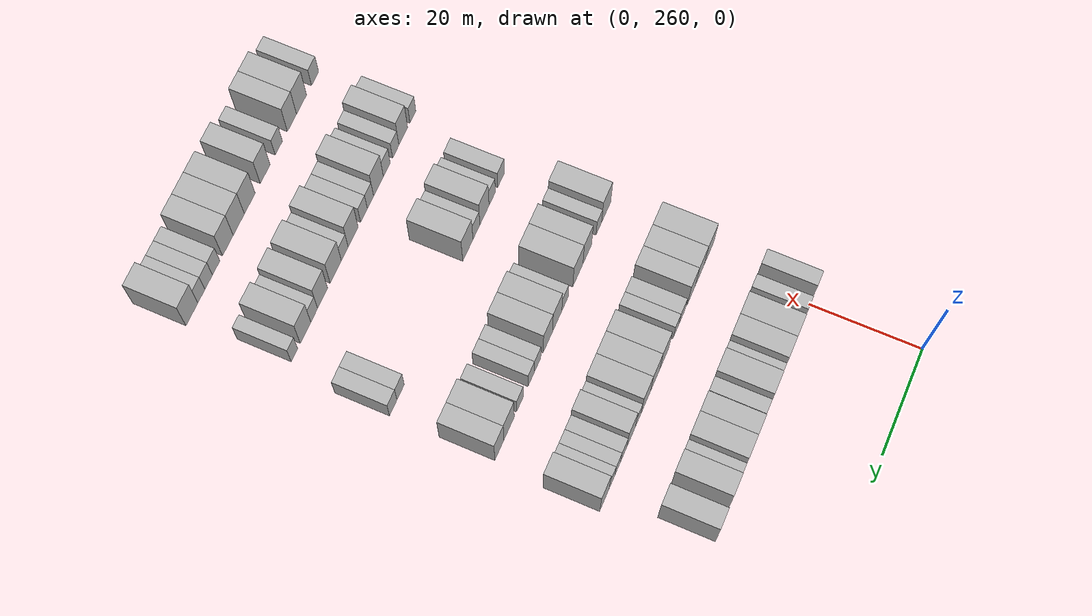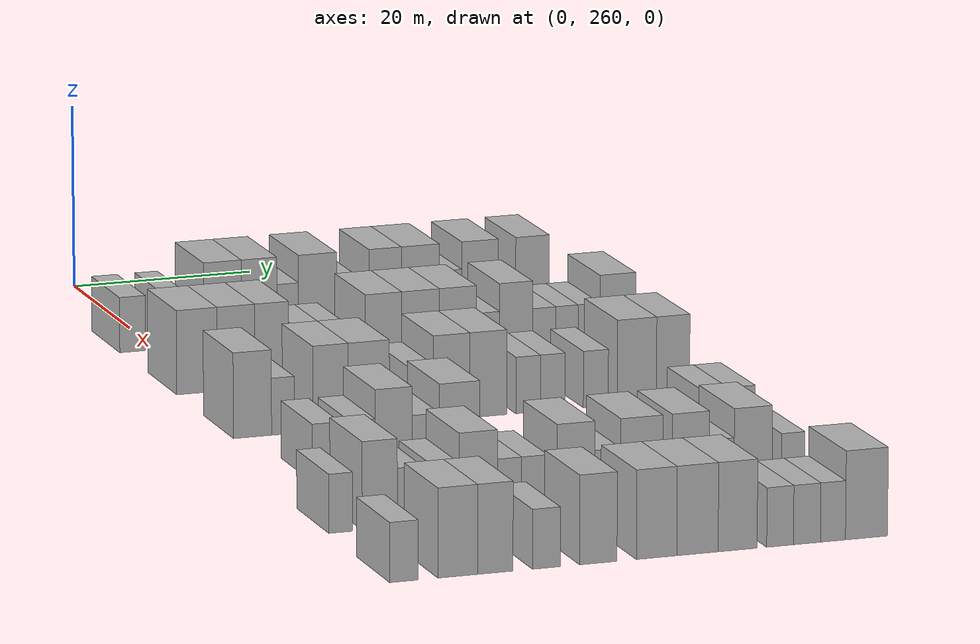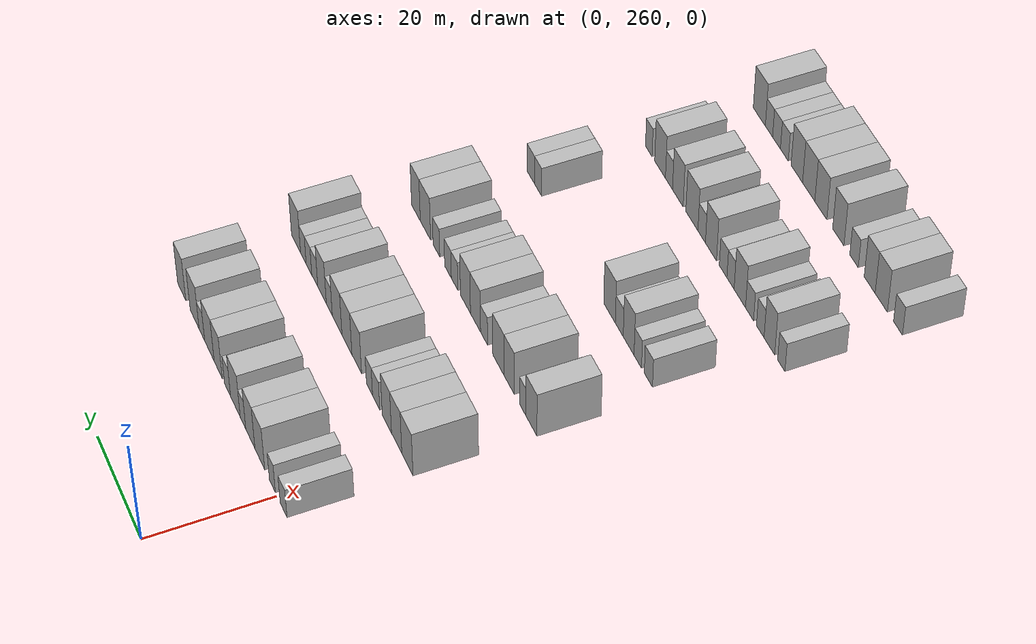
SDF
<sdf version="1.6">
 <world name="default">
  <model name="building_147">
   <static>1</static>
   <pose>25.0000 257.2128 0 0.000000 0.000000 0.000000</pose>
   <link name="link">
    <pose>0 0 3.00 0 0 0</pose>
    <collision name="collision"><geometry><box><size>10.0000 2.8471 6.0000</size></box></geometry></collision>
    <visual name="visual">
     <cast_shadows>0</cast_shadows>
     <geometry><box><size>10.0000 2.8471 6.0000</size></box></geometry>
     <material>
      <script>
       <uri>model://HANNAS_wall/materials/scripts</uri>
       <uri>model://HANNAS_wall/materials/textures</uri>
       <name>vrc/HANNAS_wall</name>
      </script>
     </material>
    </visual>
   </link>
  </model>
  <model name="building_148">
   <static>1</static>
   <pose>25.0000 261.8823 0 0.000000 0.000000 0.000000</pose>
   <link name="link">
    <pose>0 0 3.00 0 0 0</pose>
    <collision name="collision"><geometry><box><size>10.0000 2.4919 6.0000</size></box></geometry></collision>
    <visual name="visual">
     <cast_shadows>0</cast_shadows>
     <geometry><box><size>10.0000 2.4919 6.0000</size></box></geometry>
     <material>
      <script>
       <uri>model://HANNAS_wall/materials/scripts</uri>
       <uri>model://HANNAS_wall/materials/textures</uri>
       <name>vrc/HANNAS_wall</name>
      </script>
     </material>
    </visual>
   </link>
  </model>
  <model name="building_149">
   <static>1</static>
   <pose>25.0000 267.2276 0 0.000000 0.000000 0.000000</pose>
   <link name="link">
    <pose>0 0 4.50 0 0 0</pose>
    <collision name="collision"><geometry><box><size>10.0000 4.1987 9.0000</size></box></geometry></collision>
    <visual name="visual">
     <cast_shadows>0</cast_shadows>
     <geometry><box><size>10.0000 4.1987 9.0000</size></box></geometry>
     <material>
      <script>
       <uri>model://HANNAS_wall/materials/scripts</uri>
       <uri>model://HANNAS_wall/materials/textures</uri>
       <name>vrc/HANNAS_wall</name>
      </script>
     </material>
    </visual>
   </link>
  </model>
  <model name="building_150">
   <static>1</static>
   <pose>25.0000 271.3038 0 0.000000 0.000000 0.000000</pose>
   <link name="link">
    <pose>0 0 4.50 0 0 0</pose>
    <collision name="collision"><geometry><box><size>10.0000 3.9537 9.0000</size></box></geometry></collision>
    <visual name="visual">
     <cast_shadows>0</cast_shadows>
     <geometry><box><size>10.0000 3.9537 9.0000</size></box></geometry>
     <material>
      <script>
       <uri>model://HANNAS_wall/materials/scripts</uri>
       <uri>model://HANNAS_wall/materials/textures</uri>
       <name>vrc/HANNAS_wall</name>
      </script>
     </material>
    </visual>
   </link>
  </model>
  <model name="building_151">
   <static>1</static>
   <pose>25.0000 274.4862 0 0.000000 0.000000 0.000000</pose>
   <link name="link">
    <pose>0 0 3.00 0 0 0</pose>
    <collision name="collision"><geometry><box><size>10.0000 2.4110 6.0000</size></box></geometry></collision>
    <visual name="visual">
     <cast_shadows>0</cast_shadows>
     <geometry><box><size>10.0000 2.4110 6.0000</size></box></geometry>
     <material>
      <script>
       <uri>model://HANNAS_wall/materials/scripts</uri>
       <uri>model://HANNAS_wall/materials/textures</uri>
       <name>vrc/HANNAS_wall</name>
      </script>
     </material>
    </visual>
   </link>
  </model>
  <model name="building_152">
   <static>1</static>
   <pose>25.0000 277.8231 0 0.000000 0.000000 0.000000</pose>
   <link name="link">
    <pose>0 0 4.50 0 0 0</pose>
    <collision name="collision"><geometry><box><size>10.0000 4.2627 9.0000</size></box></geometry></collision>
    <visual name="visual">
     <cast_shadows>0</cast_shadows>
     <geometry><box><size>10.0000 4.2627 9.0000</size></box></geometry>
     <material>
      <script>
       <uri>model://HANNAS_wall/materials/scripts</uri>
       <uri>model://HANNAS_wall/materials/textures</uri>
       <name>vrc/HANNAS_wall</name>
      </script>
     </material>
    </visual>
   </link>
  </model>
  <model name="building_153">
   <static>1</static>
   <pose>25.0000 281.2835 0 0.000000 0.000000 0.000000</pose>
   <link name="link">
    <pose>0 0 3.00 0 0 0</pose>
    <collision name="collision"><geometry><box><size>10.0000 2.6581 6.0000</size></box></geometry></collision>
    <visual name="visual">
     <cast_shadows>0</cast_shadows>
     <geometry><box><size>10.0000 2.6581 6.0000</size></box></geometry>
     <material>
      <script>
       <uri>model://HANNAS_wall/materials/scripts</uri>
       <uri>model://HANNAS_wall/materials/textures</uri>
       <name>vrc/HANNAS_wall</name>
      </script>
     </material>
    </visual>
   </link>
  </model>
  <model name="building_154">
   <static>1</static>
   <pose>25.0000 285.4365 0 0.000000 0.000000 0.000000</pose>
   <link name="link">
    <pose>0 0 4.50 0 0 0</pose>
    <collision name="collision"><geometry><box><size>10.0000 3.6481 9.0000</size></box></geometry></collision>
    <visual name="visual">
     <cast_shadows>0</cast_shadows>
     <geometry><box><size>10.0000 3.6481 9.0000</size></box></geometry>
     <material>
      <script>
       <uri>model://HANNAS_wall/materials/scripts</uri>
       <uri>model://HANNAS_wall/materials/textures</uri>
       <name>vrc/HANNAS_wall</name>
      </script>
     </material>
    </visual>
   </link>
  </model>
  <model name="building_155">
   <static>1</static>
   <pose>25.0000 289.3986 0 0.000000 0.000000 0.000000</pose>
   <link name="link">
    <pose>0 0 4.50 0 0 0</pose>
    <collision name="collision"><geometry><box><size>10.0000 4.2760 9.0000</size></box></geometry></collision>
    <visual name="visual">
     <cast_shadows>0</cast_shadows>
     <geometry><box><size>10.0000 4.2760 9.0000</size></box></geometry>
     <material>
      <script>
       <uri>model://HANNAS_wall/materials/scripts</uri>
       <uri>model://HANNAS_wall/materials/textures</uri>
       <name>vrc/HANNAS_wall</name>
      </script>
     </material>
    </visual>
   </link>
  </model>
  <model name="building_156">
   <static>1</static>
   <pose>25.0000 292.8083 0 0.000000 0.000000 0.000000</pose>
   <link name="link">
    <pose>0 0 3.00 0 0 0</pose>
    <collision name="collision"><geometry><box><size>10.0000 2.5434 6.0000</size></box></geometry></collision>
    <visual name="visual">
     <cast_shadows>0</cast_shadows>
     <geometry><box><size>10.0000 2.5434 6.0000</size></box></geometry>
     <material>
      <script>
       <uri>model://HANNAS_wall/materials/scripts</uri>
       <uri>model://HANNAS_wall/materials/textures</uri>
       <name>vrc/HANNAS_wall</name>
      </script>
     </material>
    </visual>
   </link>
  </model>
  <model name="building_157">
   <static>1</static>
   <pose>25.0000 296.1416 0 0.000000 0.000000 0.000000</pose>
   <link name="link">
    <pose>0 0 4.50 0 0 0</pose>
    <collision name="collision"><geometry><box><size>10.0000 4.1233 9.0000</size></box></geometry></collision>
    <visual name="visual">
     <cast_shadows>0</cast_shadows>
     <geometry><box><size>10.0000 4.1233 9.0000</size></box></geometry>
     <material>
      <script>
       <uri>model://HANNAS_wall/materials/scripts</uri>
       <uri>model://HANNAS_wall/materials/textures</uri>
       <name>vrc/HANNAS_wall</name>
      </script>
     </material>
    </visual>
   </link>
  </model>
  <model name="building_158">
   <static>1</static>
   <pose>25.0000 302.1129 0 0.000000 0.000000 0.000000</pose>
   <link name="link">
    <pose>0 0 4.50 0 0 0</pose>
    <collision name="collision"><geometry><box><size>10.0000 3.8192 9.0000</size></box></geometry></collision>
    <visual name="visual">
     <cast_shadows>0</cast_shadows>
     <geometry><box><size>10.0000 3.8192 9.0000</size></box></geometry>
     <material>
      <script>
       <uri>model://HANNAS_wall/materials/scripts</uri>
       <uri>model://HANNAS_wall/materials/textures</uri>
       <name>vrc/HANNAS_wall</name>
      </script>
     </material>
    </visual>
   </link>
  </model>
  <model name="building_317">
   <static>1</static>
   <pose>44.0000 258.2714 0 0.000000 0.000000 0.000000</pose>
   <link name="link">
    <pose>0 0 4.50 0 0 0</pose>
    <collision name="collision"><geometry><box><size>10.0000 4.4143 9.0000</size></box></geometry></collision>
    <visual name="visual">
     <cast_shadows>0</cast_shadows>
     <geometry><box><size>10.0000 4.4143 9.0000</size></box></geometry>
     <material>
      <script>
       <uri>model://HANNAS_wall/materials/scripts</uri>
       <uri>model://HANNAS_wall/materials/textures</uri>
       <name>vrc/HANNAS_wall</name>
      </script>
     </material>
    </visual>
   </link>
  </model>
  <model name="building_318">
   <static>1</static>
   <pose>44.0000 262.5353 0 0.000000 0.000000 0.000000</pose>
   <link name="link">
    <pose>0 0 4.50 0 0 0</pose>
    <collision name="collision"><geometry><box><size>10.0000 4.1136 9.0000</size></box></geometry></collision>
    <visual name="visual">
     <cast_shadows>0</cast_shadows>
     <geometry><box><size>10.0000 4.1136 9.0000</size></box></geometry>
     <material>
      <script>
       <uri>model://HANNAS_wall/materials/scripts</uri>
       <uri>model://HANNAS_wall/materials/textures</uri>
       <name>vrc/HANNAS_wall</name>
      </script>
     </material>
    </visual>
   </link>
  </model>
  <model name="building_319">
   <static>1</static>
   <pose>44.0000 266.4527 0 0.000000 0.000000 0.000000</pose>
   <link name="link">
    <pose>0 0 4.50 0 0 0</pose>
    <collision name="collision"><geometry><box><size>10.0000 3.7212 9.0000</size></box></geometry></collision>
    <visual name="visual">
     <cast_shadows>0</cast_shadows>
     <geometry><box><size>10.0000 3.7212 9.0000</size></box></geometry>
     <material>
      <script>
       <uri>model://HANNAS_wall/materials/scripts</uri>
       <uri>model://HANNAS_wall/materials/textures</uri>
       <name>vrc/HANNAS_wall</name>
      </script>
     </material>
    </visual>
   </link>
  </model>
  <model name="building_320">
   <static>1</static>
   <pose>44.0000 270.7901 0 0.000000 0.000000 0.000000</pose>
   <link name="link">
    <pose>0 0 3.00 0 0 0</pose>
    <collision name="collision"><geometry><box><size>10.0000 2.9537 6.0000</size></box></geometry></collision>
    <visual name="visual">
     <cast_shadows>0</cast_shadows>
     <geometry><box><size>10.0000 2.9537 6.0000</size></box></geometry>
     <material>
      <script>
       <uri>model://HANNAS_wall/materials/scripts</uri>
       <uri>model://HANNAS_wall/materials/textures</uri>
       <name>vrc/HANNAS_wall</name>
      </script>
     </material>
    </visual>
   </link>
  </model>
  <model name="building_321">
   <static>1</static>
   <pose>44.0000 273.5145 0 0.000000 0.000000 0.000000</pose>
   <link name="link">
    <pose>0 0 3.00 0 0 0</pose>
    <collision name="collision"><geometry><box><size>10.0000 2.4951 6.0000</size></box></geometry></collision>
    <visual name="visual">
     <cast_shadows>0</cast_shadows>
     <geometry><box><size>10.0000 2.4951 6.0000</size></box></geometry>
     <material>
      <script>
       <uri>model://HANNAS_wall/materials/scripts</uri>
       <uri>model://HANNAS_wall/materials/textures</uri>
       <name>vrc/HANNAS_wall</name>
      </script>
     </material>
    </visual>
   </link>
  </model>
  <model name="building_322">
   <static>1</static>
   <pose>44.0000 278.7722 0 0.000000 0.000000 0.000000</pose>
   <link name="link">
    <pose>0 0 4.50 0 0 0</pose>
    <collision name="collision"><geometry><box><size>10.0000 4.0202 9.0000</size></box></geometry></collision>
    <visual name="visual">
     <cast_shadows>0</cast_shadows>
     <geometry><box><size>10.0000 4.0202 9.0000</size></box></geometry>
     <material>
      <script>
       <uri>model://HANNAS_wall/materials/scripts</uri>
       <uri>model://HANNAS_wall/materials/textures</uri>
       <name>vrc/HANNAS_wall</name>
      </script>
     </material>
    </visual>
   </link>
  </model>
  <model name="building_323">
   <static>1</static>
   <pose>44.0000 282.8722 0 0.000000 0.000000 0.000000</pose>
   <link name="link">
    <pose>0 0 4.50 0 0 0</pose>
    <collision name="collision"><geometry><box><size>10.0000 4.1797 9.0000</size></box></geometry></collision>
    <visual name="visual">
     <cast_shadows>0</cast_shadows>
     <geometry><box><size>10.0000 4.1797 9.0000</size></box></geometry>
     <material>
      <script>
       <uri>model://HANNAS_wall/materials/scripts</uri>
       <uri>model://HANNAS_wall/materials/textures</uri>
       <name>vrc/HANNAS_wall</name>
      </script>
     </material>
    </visual>
   </link>
  </model>
  <model name="building_324">
   <static>1</static>
   <pose>44.0000 287.0128 0 0.000000 0.000000 0.000000</pose>
   <link name="link">
    <pose>0 0 4.50 0 0 0</pose>
    <collision name="collision"><geometry><box><size>10.0000 4.1016 9.0000</size></box></geometry></collision>
    <visual name="visual">
     <cast_shadows>0</cast_shadows>
     <geometry><box><size>10.0000 4.1016 9.0000</size></box></geometry>
     <material>
      <script>
       <uri>model://HANNAS_wall/materials/scripts</uri>
       <uri>model://HANNAS_wall/materials/textures</uri>
       <name>vrc/HANNAS_wall</name>
      </script>
     </material>
    </visual>
   </link>
  </model>
  <model name="building_325">
   <static>1</static>
   <pose>44.0000 290.3367 0 0.000000 0.000000 0.000000</pose>
   <link name="link">
    <pose>0 0 3.00 0 0 0</pose>
    <collision name="collision"><geometry><box><size>10.0000 2.5463 6.0000</size></box></geometry></collision>
    <visual name="visual">
     <cast_shadows>0</cast_shadows>
     <geometry><box><size>10.0000 2.5463 6.0000</size></box></geometry>
     <material>
      <script>
       <uri>model://HANNAS_wall/materials/scripts</uri>
       <uri>model://HANNAS_wall/materials/textures</uri>
       <name>vrc/HANNAS_wall</name>
      </script>
     </material>
    </visual>
   </link>
  </model>
  <model name="building_326">
   <static>1</static>
   <pose>44.0000 293.4588 0 0.000000 0.000000 0.000000</pose>
   <link name="link">
    <pose>0 0 4.50 0 0 0</pose>
    <collision name="collision"><geometry><box><size>10.0000 3.6979 9.0000</size></box></geometry></collision>
    <visual name="visual">
     <cast_shadows>0</cast_shadows>
     <geometry><box><size>10.0000 3.6979 9.0000</size></box></geometry>
     <material>
      <script>
       <uri>model://HANNAS_wall/materials/scripts</uri>
       <uri>model://HANNAS_wall/materials/textures</uri>
       <name>vrc/HANNAS_wall</name>
      </script>
     </material>
    </visual>
   </link>
  </model>
  <model name="building_327">
   <static>1</static>
   <pose>44.0000 296.6218 0 0.000000 0.000000 0.000000</pose>
   <link name="link">
    <pose>0 0 3.00 0 0 0</pose>
    <collision name="collision"><geometry><box><size>10.0000 2.6282 6.0000</size></box></geometry></collision>
    <visual name="visual">
     <cast_shadows>0</cast_shadows>
     <geometry><box><size>10.0000 2.6282 6.0000</size></box></geometry>
     <material>
      <script>
       <uri>model://HANNAS_wall/materials/scripts</uri>
       <uri>model://HANNAS_wall/materials/textures</uri>
       <name>vrc/HANNAS_wall</name>
      </script>
     </material>
    </visual>
   </link>
  </model>
  <model name="building_328">
   <static>1</static>
   <pose>44.0000 299.1699 0 0.000000 0.000000 0.000000</pose>
   <link name="link">
    <pose>0 0 3.00 0 0 0</pose>
    <collision name="collision"><geometry><box><size>10.0000 2.4679 6.0000</size></box></geometry></collision>
    <visual name="visual">
     <cast_shadows>0</cast_shadows>
     <geometry><box><size>10.0000 2.4679 6.0000</size></box></geometry>
     <material>
      <script>
       <uri>model://HANNAS_wall/materials/scripts</uri>
       <uri>model://HANNAS_wall/materials/textures</uri>
       <name>vrc/HANNAS_wall</name>
      </script>
     </material>
    </visual>
   </link>
  </model>
  <model name="building_329">
   <static>1</static>
   <pose>44.0000 301.6260 0 0.000000 0.000000 0.000000</pose>
   <link name="link">
    <pose>0 0 3.00 0 0 0</pose>
    <collision name="collision"><geometry><box><size>10.0000 2.4445 6.0000</size></box></geometry></collision>
    <visual name="visual">
     <cast_shadows>0</cast_shadows>
     <geometry><box><size>10.0000 2.4445 6.0000</size></box></geometry>
     <material>
      <script>
       <uri>model://HANNAS_wall/materials/scripts</uri>
       <uri>model://HANNAS_wall/materials/textures</uri>
       <name>vrc/HANNAS_wall</name>
      </script>
     </material>
    </visual>
   </link>
  </model>
  <model name="building_330">
   <static>1</static>
   <pose>44.0000 304.8469 0 0.000000 0.000000 0.000000</pose>
   <link name="link">
    <pose>0 0 4.50 0 0 0</pose>
    <collision name="collision"><geometry><box><size>10.0000 3.9973 9.0000</size></box></geometry></collision>
    <visual name="visual">
     <cast_shadows>0</cast_shadows>
     <geometry><box><size>10.0000 3.9973 9.0000</size></box></geometry>
     <material>
      <script>
       <uri>model://HANNAS_wall/materials/scripts</uri>
       <uri>model://HANNAS_wall/materials/textures</uri>
       <name>vrc/HANNAS_wall</name>
      </script>
     </material>
    </visual>
   </link>
  </model>
  <model name="building_499">
   <static>1</static>
   <pose>63.0000 258.1415 0 0.000000 0.000000 0.000000</pose>
   <link name="link">
    <pose>0 0 4.50 0 0 0</pose>
    <collision name="collision"><geometry><box><size>10.0000 4.0849 9.0000</size></box></geometry></collision>
    <visual name="visual">
     <cast_shadows>0</cast_shadows>
     <geometry><box><size>10.0000 4.0849 9.0000</size></box></geometry>
     <material>
      <script>
       <uri>model://HANNAS_wall/materials/scripts</uri>
       <uri>model://HANNAS_wall/materials/textures</uri>
       <name>vrc/HANNAS_wall</name>
      </script>
     </material>
    </visual>
   </link>
  </model>
  <model name="building_500">
   <static>1</static>
   <pose>63.0000 261.4115 0 0.000000 0.000000 0.000000</pose>
   <link name="link">
    <pose>0 0 3.00 0 0 0</pose>
    <collision name="collision"><geometry><box><size>10.0000 2.4551 6.0000</size></box></geometry></collision>
    <visual name="visual">
     <cast_shadows>0</cast_shadows>
     <geometry><box><size>10.0000 2.4551 6.0000</size></box></geometry>
     <material>
      <script>
       <uri>model://HANNAS_wall/materials/scripts</uri>
       <uri>model://HANNAS_wall/materials/textures</uri>
       <name>vrc/HANNAS_wall</name>
      </script>
     </material>
    </visual>
   </link>
  </model>
  <model name="building_501">
   <static>1</static>
   <pose>63.0000 266.5518 0 0.000000 0.000000 0.000000</pose>
   <link name="link">
    <pose>0 0 4.50 0 0 0</pose>
    <collision name="collision"><geometry><box><size>10.0000 3.8255 9.0000</size></box></geometry></collision>
    <visual name="visual">
     <cast_shadows>0</cast_shadows>
     <geometry><box><size>10.0000 3.8255 9.0000</size></box></geometry>
     <material>
      <script>
       <uri>model://HANNAS_wall/materials/scripts</uri>
       <uri>model://HANNAS_wall/materials/textures</uri>
       <name>vrc/HANNAS_wall</name>
      </script>
     </material>
    </visual>
   </link>
  </model>
  <model name="building_502">
   <static>1</static>
   <pose>63.0000 270.6862 0 0.000000 0.000000 0.000000</pose>
   <link name="link">
    <pose>0 0 4.50 0 0 0</pose>
    <collision name="collision"><geometry><box><size>10.0000 4.4432 9.0000</size></box></geometry></collision>
    <visual name="visual">
     <cast_shadows>0</cast_shadows>
     <geometry><box><size>10.0000 4.4432 9.0000</size></box></geometry>
     <material>
      <script>
       <uri>model://HANNAS_wall/materials/scripts</uri>
       <uri>model://HANNAS_wall/materials/textures</uri>
       <name>vrc/HANNAS_wall</name>
      </script>
     </material>
    </visual>
   </link>
  </model>
  <model name="building_503">
   <static>1</static>
   <pose>63.0000 276.2923 0 0.000000 0.000000 0.000000</pose>
   <link name="link">
    <pose>0 0 3.00 0 0 0</pose>
    <collision name="collision"><geometry><box><size>10.0000 2.7690 6.0000</size></box></geometry></collision>
    <visual name="visual">
     <cast_shadows>0</cast_shadows>
     <geometry><box><size>10.0000 2.7690 6.0000</size></box></geometry>
     <material>
      <script>
       <uri>model://HANNAS_wall/materials/scripts</uri>
       <uri>model://HANNAS_wall/materials/textures</uri>
       <name>vrc/HANNAS_wall</name>
      </script>
     </material>
    </visual>
   </link>
  </model>
  <model name="building_504">
   <static>1</static>
   <pose>63.0000 279.6749 0 0.000000 0.000000 0.000000</pose>
   <link name="link">
    <pose>0 0 4.50 0 0 0</pose>
    <collision name="collision"><geometry><box><size>10.0000 3.9963 9.0000</size></box></geometry></collision>
    <visual name="visual">
     <cast_shadows>0</cast_shadows>
     <geometry><box><size>10.0000 3.9963 9.0000</size></box></geometry>
     <material>
      <script>
       <uri>model://HANNAS_wall/materials/scripts</uri>
       <uri>model://HANNAS_wall/materials/textures</uri>
       <name>vrc/HANNAS_wall</name>
      </script>
     </material>
    </visual>
   </link>
  </model>
  <model name="building_505">
   <static>1</static>
   <pose>63.0000 283.6733 0 0.000000 0.000000 0.000000</pose>
   <link name="link">
    <pose>0 0 4.50 0 0 0</pose>
    <collision name="collision"><geometry><box><size>10.0000 4.0003 9.0000</size></box></geometry></collision>
    <visual name="visual">
     <cast_shadows>0</cast_shadows>
     <geometry><box><size>10.0000 4.0003 9.0000</size></box></geometry>
     <material>
      <script>
       <uri>model://HANNAS_wall/materials/scripts</uri>
       <uri>model://HANNAS_wall/materials/textures</uri>
       <name>vrc/HANNAS_wall</name>
      </script>
     </material>
    </visual>
   </link>
  </model>
  <model name="building_506">
   <static>1</static>
   <pose>63.0000 288.0195 0 0.000000 0.000000 0.000000</pose>
   <link name="link">
    <pose>0 0 3.00 0 0 0</pose>
    <collision name="collision"><geometry><box><size>10.0000 2.6921 6.0000</size></box></geometry></collision>
    <visual name="visual">
     <cast_shadows>0</cast_shadows>
     <geometry><box><size>10.0000 2.6921 6.0000</size></box></geometry>
     <material>
      <script>
       <uri>model://HANNAS_wall/materials/scripts</uri>
       <uri>model://HANNAS_wall/materials/textures</uri>
       <name>vrc/HANNAS_wall</name>
      </script>
     </material>
    </visual>
   </link>
  </model>
  <model name="building_507">
   <static>1</static>
   <pose>63.0000 290.7170 0 0.000000 0.000000 0.000000</pose>
   <link name="link">
    <pose>0 0 3.00 0 0 0</pose>
    <collision name="collision"><geometry><box><size>10.0000 2.7030 6.0000</size></box></geometry></collision>
    <visual name="visual">
     <cast_shadows>0</cast_shadows>
     <geometry><box><size>10.0000 2.7030 6.0000</size></box></geometry>
     <material>
      <script>
       <uri>model://HANNAS_wall/materials/scripts</uri>
       <uri>model://HANNAS_wall/materials/textures</uri>
       <name>vrc/HANNAS_wall</name>
      </script>
     </material>
    </visual>
   </link>
  </model>
  <model name="building_508">
   <static>1</static>
   <pose>63.0000 295.4434 0 0.000000 0.000000 0.000000</pose>
   <link name="link">
    <pose>0 0 3.00 0 0 0</pose>
    <collision name="collision"><geometry><box><size>10.0000 2.7498 6.0000</size></box></geometry></collision>
    <visual name="visual">
     <cast_shadows>0</cast_shadows>
     <geometry><box><size>10.0000 2.7498 6.0000</size></box></geometry>
     <material>
      <script>
       <uri>model://HANNAS_wall/materials/scripts</uri>
       <uri>model://HANNAS_wall/materials/textures</uri>
       <name>vrc/HANNAS_wall</name>
      </script>
     </material>
    </visual>
   </link>
  </model>
  <model name="building_509">
   <static>1</static>
   <pose>63.0000 299.9736 0 0.000000 0.000000 0.000000</pose>
   <link name="link">
    <pose>0 0 4.50 0 0 0</pose>
    <collision name="collision"><geometry><box><size>10.0000 4.3106 9.0000</size></box></geometry></collision>
    <visual name="visual">
     <cast_shadows>0</cast_shadows>
     <geometry><box><size>10.0000 4.3106 9.0000</size></box></geometry>
     <material>
      <script>
       <uri>model://HANNAS_wall/materials/scripts</uri>
       <uri>model://HANNAS_wall/materials/textures</uri>
       <name>vrc/HANNAS_wall</name>
      </script>
     </material>
    </visual>
   </link>
  </model>
  <model name="building_510">
   <static>1</static>
   <pose>63.0000 303.9609 0 0.000000 0.000000 0.000000</pose>
   <link name="link">
    <pose>0 0 4.50 0 0 0</pose>
    <collision name="collision"><geometry><box><size>10.0000 3.6640 9.0000</size></box></geometry></collision>
    <visual name="visual">
     <cast_shadows>0</cast_shadows>
     <geometry><box><size>10.0000 3.6640 9.0000</size></box></geometry>
     <material>
      <script>
       <uri>model://HANNAS_wall/materials/scripts</uri>
       <uri>model://HANNAS_wall/materials/textures</uri>
       <name>vrc/HANNAS_wall</name>
      </script>
     </material>
    </visual>
   </link>
  </model>
  <model name="building_678">
   <static>1</static>
   <pose>82.0000 259.7238 0 0.000000 0.000000 0.000000</pose>
   <link name="link">
    <pose>0 0 3.00 0 0 0</pose>
    <collision name="collision"><geometry><box><size>10.0000 2.9459 6.0000</size></box></geometry></collision>
    <visual name="visual">
     <cast_shadows>0</cast_shadows>
     <geometry><box><size>10.0000 2.9459 6.0000</size></box></geometry>
     <material>
      <script>
       <uri>model://HANNAS_wall/materials/scripts</uri>
       <uri>model://HANNAS_wall/materials/textures</uri>
       <name>vrc/HANNAS_wall</name>
      </script>
     </material>
    </visual>
   </link>
  </model>
  <model name="building_679">
   <static>1</static>
   <pose>82.0000 263.5472 0 0.000000 0.000000 0.000000</pose>
   <link name="link">
    <pose>0 0 3.00 0 0 0</pose>
    <collision name="collision"><geometry><box><size>10.0000 2.7008 6.0000</size></box></geometry></collision>
    <visual name="visual">
     <cast_shadows>0</cast_shadows>
     <geometry><box><size>10.0000 2.7008 6.0000</size></box></geometry>
     <material>
      <script>
       <uri>model://HANNAS_wall/materials/scripts</uri>
       <uri>model://HANNAS_wall/materials/textures</uri>
       <name>vrc/HANNAS_wall</name>
      </script>
     </material>
    </visual>
   </link>
  </model>
  <model name="building_680">
   <static>1</static>
   <pose>82.0000 266.8663 0 0.000000 0.000000 0.000000</pose>
   <link name="link">
    <pose>0 0 4.50 0 0 0</pose>
    <collision name="collision"><geometry><box><size>10.0000 3.9372 9.0000</size></box></geometry></collision>
    <visual name="visual">
     <cast_shadows>0</cast_shadows>
     <geometry><box><size>10.0000 3.9372 9.0000</size></box></geometry>
     <material>
      <script>
       <uri>model://HANNAS_wall/materials/scripts</uri>
       <uri>model://HANNAS_wall/materials/textures</uri>
       <name>vrc/HANNAS_wall</name>
      </script>
     </material>
    </visual>
   </link>
  </model>
  <model name="building_681">
   <static>1</static>
   <pose>82.0000 270.2925 0 0.000000 0.000000 0.000000</pose>
   <link name="link">
    <pose>0 0 3.00 0 0 0</pose>
    <collision name="collision"><geometry><box><size>10.0000 2.9153 6.0000</size></box></geometry></collision>
    <visual name="visual">
     <cast_shadows>0</cast_shadows>
     <geometry><box><size>10.0000 2.9153 6.0000</size></box></geometry>
     <material>
      <script>
       <uri>model://HANNAS_wall/materials/scripts</uri>
       <uri>model://HANNAS_wall/materials/textures</uri>
       <name>vrc/HANNAS_wall</name>
      </script>
     </material>
    </visual>
   </link>
  </model>
  <model name="building_682">
   <static>1</static>
   <pose>82.0000 273.8923 0 0.000000 0.000000 0.000000</pose>
   <link name="link">
    <pose>0 0 4.50 0 0 0</pose>
    <collision name="collision"><geometry><box><size>10.0000 4.2843 9.0000</size></box></geometry></collision>
    <visual name="visual">
     <cast_shadows>0</cast_shadows>
     <geometry><box><size>10.0000 4.2843 9.0000</size></box></geometry>
     <material>
      <script>
       <uri>model://HANNAS_wall/materials/scripts</uri>
       <uri>model://HANNAS_wall/materials/textures</uri>
       <name>vrc/HANNAS_wall</name>
      </script>
     </material>
    </visual>
   </link>
  </model>
  <model name="building_683">
   <static>1</static>
   <pose>82.0000 301.3612 0 0.000000 0.000000 0.000000</pose>
   <link name="link">
    <pose>0 0 3.00 0 0 0</pose>
    <collision name="collision"><geometry><box><size>10.0000 2.8845 6.0000</size></box></geometry></collision>
    <visual name="visual">
     <cast_shadows>0</cast_shadows>
     <geometry><box><size>10.0000 2.8845 6.0000</size></box></geometry>
     <material>
      <script>
       <uri>model://HANNAS_wall/materials/scripts</uri>
       <uri>model://HANNAS_wall/materials/textures</uri>
       <name>vrc/HANNAS_wall</name>
      </script>
     </material>
    </visual>
   </link>
  </model>
  <model name="building_684">
   <static>1</static>
   <pose>82.0000 304.2771 0 0.000000 0.000000 0.000000</pose>
   <link name="link">
    <pose>0 0 3.00 0 0 0</pose>
    <collision name="collision"><geometry><box><size>10.0000 2.9472 6.0000</size></box></geometry></collision>
    <visual name="visual">
     <cast_shadows>0</cast_shadows>
     <geometry><box><size>10.0000 2.9472 6.0000</size></box></geometry>
     <material>
      <script>
       <uri>model://HANNAS_wall/materials/scripts</uri>
       <uri>model://HANNAS_wall/materials/textures</uri>
       <name>vrc/HANNAS_wall</name>
      </script>
     </material>
    </visual>
   </link>
  </model>
  <model name="building_845">
   <static>1</static>
   <pose>101.0000 254.8559 0 0.000000 0.000000 0.000000</pose>
   <link name="link">
    <pose>0 0 3.00 0 0 0</pose>
    <collision name="collision"><geometry><box><size>10.0000 2.4710 6.0000</size></box></geometry></collision>
    <visual name="visual">
     <cast_shadows>0</cast_shadows>
     <geometry><box><size>10.0000 2.4710 6.0000</size></box></geometry>
     <material>
      <script>
       <uri>model://HANNAS_wall/materials/scripts</uri>
       <uri>model://HANNAS_wall/materials/textures</uri>
       <name>vrc/HANNAS_wall</name>
      </script>
     </material>
    </visual>
   </link>
  </model>
  <model name="building_846">
   <static>1</static>
   <pose>101.0000 258.9156 0 0.000000 0.000000 0.000000</pose>
   <link name="link">
    <pose>0 0 4.50 0 0 0</pose>
    <collision name="collision"><geometry><box><size>10.0000 3.6485 9.0000</size></box></geometry></collision>
    <visual name="visual">
     <cast_shadows>0</cast_shadows>
     <geometry><box><size>10.0000 3.6485 9.0000</size></box></geometry>
     <material>
      <script>
       <uri>model://HANNAS_wall/materials/scripts</uri>
       <uri>model://HANNAS_wall/materials/textures</uri>
       <name>vrc/HANNAS_wall</name>
      </script>
     </material>
    </visual>
   </link>
  </model>
  <model name="building_847">
   <static>1</static>
   <pose>101.0000 262.0502 0 0.000000 0.000000 0.000000</pose>
   <link name="link">
    <pose>0 0 3.00 0 0 0</pose>
    <collision name="collision"><geometry><box><size>10.0000 2.6206 6.0000</size></box></geometry></collision>
    <visual name="visual">
     <cast_shadows>0</cast_shadows>
     <geometry><box><size>10.0000 2.6206 6.0000</size></box></geometry>
     <material>
      <script>
       <uri>model://HANNAS_wall/materials/scripts</uri>
       <uri>model://HANNAS_wall/materials/textures</uri>
       <name>vrc/HANNAS_wall</name>
      </script>
     </material>
    </visual>
   </link>
  </model>
  <model name="building_848">
   <static>1</static>
   <pose>101.0000 265.7636 0 0.000000 0.000000 0.000000</pose>
   <link name="link">
    <pose>0 0 3.00 0 0 0</pose>
    <collision name="collision"><geometry><box><size>10.0000 2.8061 6.0000</size></box></geometry></collision>
    <visual name="visual">
     <cast_shadows>0</cast_shadows>
     <geometry><box><size>10.0000 2.8061 6.0000</size></box></geometry>
     <material>
      <script>
       <uri>model://HANNAS_wall/materials/scripts</uri>
       <uri>model://HANNAS_wall/materials/textures</uri>
       <name>vrc/HANNAS_wall</name>
      </script>
     </material>
    </visual>
   </link>
  </model>
  <model name="building_849">
   <static>1</static>
   <pose>101.0000 269.1738 0 0.000000 0.000000 0.000000</pose>
   <link name="link">
    <pose>0 0 4.50 0 0 0</pose>
    <collision name="collision"><geometry><box><size>10.0000 4.0144 9.0000</size></box></geometry></collision>
    <visual name="visual">
     <cast_shadows>0</cast_shadows>
     <geometry><box><size>10.0000 4.0144 9.0000</size></box></geometry>
     <material>
      <script>
       <uri>model://HANNAS_wall/materials/scripts</uri>
       <uri>model://HANNAS_wall/materials/textures</uri>
       <name>vrc/HANNAS_wall</name>
      </script>
     </material>
    </visual>
   </link>
  </model>
  <model name="building_850">
   <static>1</static>
   <pose>101.0000 272.4551 0 0.000000 0.000000 0.000000</pose>
   <link name="link">
    <pose>0 0 3.00 0 0 0</pose>
    <collision name="collision"><geometry><box><size>10.0000 2.5481 6.0000</size></box></geometry></collision>
    <visual name="visual">
     <cast_shadows>0</cast_shadows>
     <geometry><box><size>10.0000 2.5481 6.0000</size></box></geometry>
     <material>
      <script>
       <uri>model://HANNAS_wall/materials/scripts</uri>
       <uri>model://HANNAS_wall/materials/textures</uri>
       <name>vrc/HANNAS_wall</name>
      </script>
     </material>
    </visual>
   </link>
  </model>
  <model name="building_851">
   <static>1</static>
   <pose>101.0000 275.0875 0 0.000000 0.000000 0.000000</pose>
   <link name="link">
    <pose>0 0 3.00 0 0 0</pose>
    <collision name="collision"><geometry><box><size>10.0000 2.7167 6.0000</size></box></geometry></collision>
    <visual name="visual">
     <cast_shadows>0</cast_shadows>
     <geometry><box><size>10.0000 2.7167 6.0000</size></box></geometry>
     <material>
      <script>
       <uri>model://HANNAS_wall/materials/scripts</uri>
       <uri>model://HANNAS_wall/materials/textures</uri>
       <name>vrc/HANNAS_wall</name>
      </script>
     </material>
    </visual>
   </link>
  </model>
  <model name="building_852">
   <static>1</static>
   <pose>101.0000 279.4395 0 0.000000 0.000000 0.000000</pose>
   <link name="link">
    <pose>0 0 4.50 0 0 0</pose>
    <collision name="collision"><geometry><box><size>10.0000 3.9874 9.0000</size></box></geometry></collision>
    <visual name="visual">
     <cast_shadows>0</cast_shadows>
     <geometry><box><size>10.0000 3.9874 9.0000</size></box></geometry>
     <material>
      <script>
       <uri>model://HANNAS_wall/materials/scripts</uri>
       <uri>model://HANNAS_wall/materials/textures</uri>
       <name>vrc/HANNAS_wall</name>
      </script>
     </material>
    </visual>
   </link>
  </model>
  <model name="building_853">
   <static>1</static>
   <pose>101.0000 282.8006 0 0.000000 0.000000 0.000000</pose>
   <link name="link">
    <pose>0 0 3.00 0 0 0</pose>
    <collision name="collision"><geometry><box><size>10.0000 2.7348 6.0000</size></box></geometry></collision>
    <visual name="visual">
     <cast_shadows>0</cast_shadows>
     <geometry><box><size>10.0000 2.7348 6.0000</size></box></geometry>
     <material>
      <script>
       <uri>model://HANNAS_wall/materials/scripts</uri>
       <uri>model://HANNAS_wall/materials/textures</uri>
       <name>vrc/HANNAS_wall</name>
      </script>
     </material>
    </visual>
   </link>
  </model>
  <model name="building_854">
   <static>1</static>
   <pose>101.0000 286.3800 0 0.000000 0.000000 0.000000</pose>
   <link name="link">
    <pose>0 0 4.50 0 0 0</pose>
    <collision name="collision"><geometry><box><size>10.0000 4.4240 9.0000</size></box></geometry></collision>
    <visual name="visual">
     <cast_shadows>0</cast_shadows>
     <geometry><box><size>10.0000 4.4240 9.0000</size></box></geometry>
     <material>
      <script>
       <uri>model://HANNAS_wall/materials/scripts</uri>
       <uri>model://HANNAS_wall/materials/textures</uri>
       <name>vrc/HANNAS_wall</name>
      </script>
     </material>
    </visual>
   </link>
  </model>
  <model name="building_855">
   <static>1</static>
   <pose>101.0000 291.5675 0 0.000000 0.000000 0.000000</pose>
   <link name="link">
    <pose>0 0 4.50 0 0 0</pose>
    <collision name="collision"><geometry><box><size>10.0000 3.9511 9.0000</size></box></geometry></collision>
    <visual name="visual">
     <cast_shadows>0</cast_shadows>
     <geometry><box><size>10.0000 3.9511 9.0000</size></box></geometry>
     <material>
      <script>
       <uri>model://HANNAS_wall/materials/scripts</uri>
       <uri>model://HANNAS_wall/materials/textures</uri>
       <name>vrc/HANNAS_wall</name>
      </script>
     </material>
    </visual>
   </link>
  </model>
  <model name="building_856">
   <static>1</static>
   <pose>101.0000 294.8647 0 0.000000 0.000000 0.000000</pose>
   <link name="link">
    <pose>0 0 3.00 0 0 0</pose>
    <collision name="collision"><geometry><box><size>10.0000 2.6434 6.0000</size></box></geometry></collision>
    <visual name="visual">
     <cast_shadows>0</cast_shadows>
     <geometry><box><size>10.0000 2.6434 6.0000</size></box></geometry>
     <material>
      <script>
       <uri>model://HANNAS_wall/materials/scripts</uri>
       <uri>model://HANNAS_wall/materials/textures</uri>
       <name>vrc/HANNAS_wall</name>
      </script>
     </material>
    </visual>
   </link>
  </model>
  <model name="building_857">
   <static>1</static>
   <pose>101.0000 298.2179 0 0.000000 0.000000 0.000000</pose>
   <link name="link">
    <pose>0 0 4.50 0 0 0</pose>
    <collision name="collision"><geometry><box><size>10.0000 4.0630 9.0000</size></box></geometry></collision>
    <visual name="visual">
     <cast_shadows>0</cast_shadows>
     <geometry><box><size>10.0000 4.0630 9.0000</size></box></geometry>
     <material>
      <script>
       <uri>model://HANNAS_wall/materials/scripts</uri>
       <uri>model://HANNAS_wall/materials/textures</uri>
       <name>vrc/HANNAS_wall</name>
      </script>
     </material>
    </visual>
   </link>
  </model>
  <model name="building_858">
   <static>1</static>
   <pose>101.0000 302.4965 0 0.000000 0.000000 0.000000</pose>
   <link name="link">
    <pose>0 0 3.00 0 0 0</pose>
    <collision name="collision"><geometry><box><size>10.0000 2.4941 6.0000</size></box></geometry></collision>
    <visual name="visual">
     <cast_shadows>0</cast_shadows>
     <geometry><box><size>10.0000 2.4941 6.0000</size></box></geometry>
     <material>
      <script>
       <uri>model://HANNAS_wall/materials/scripts</uri>
       <uri>model://HANNAS_wall/materials/textures</uri>
       <name>vrc/HANNAS_wall</name>
      </script>
     </material>
    </visual>
   </link>
  </model>
  <model name="building_1029">
   <static>1</static>
   <pose>120.0000 254.8956 0 0.000000 0.000000 0.000000</pose>
   <link name="link">
    <pose>0 0 3.00 0 0 0</pose>
    <collision name="collision"><geometry><box><size>10.0000 2.9127 6.0000</size></box></geometry></collision>
    <visual name="visual">
     <cast_shadows>0</cast_shadows>
     <geometry><box><size>10.0000 2.9127 6.0000</size></box></geometry>
     <material>
      <script>
       <uri>model://HANNAS_wall/materials/scripts</uri>
       <uri>model://HANNAS_wall/materials/textures</uri>
       <name>vrc/HANNAS_wall</name>
      </script>
     </material>
    </visual>
   </link>
  </model>
  <model name="building_1030">
   <static>1</static>
   <pose>120.0000 260.3854 0 0.000000 0.000000 0.000000</pose>
   <link name="link">
    <pose>0 0 4.50 0 0 0</pose>
    <collision name="collision"><geometry><box><size>10.0000 4.0669 9.0000</size></box></geometry></collision>
    <visual name="visual">
     <cast_shadows>0</cast_shadows>
     <geometry><box><size>10.0000 4.0669 9.0000</size></box></geometry>
     <material>
      <script>
       <uri>model://HANNAS_wall/materials/scripts</uri>
       <uri>model://HANNAS_wall/materials/textures</uri>
       <name>vrc/HANNAS_wall</name>
      </script>
     </material>
    </visual>
   </link>
  </model>
  <model name="building_1031">
   <static>1</static>
   <pose>120.0000 264.2395 0 0.000000 0.000000 0.000000</pose>
   <link name="link">
    <pose>0 0 4.50 0 0 0</pose>
    <collision name="collision"><geometry><box><size>10.0000 3.6413 9.0000</size></box></geometry></collision>
    <visual name="visual">
     <cast_shadows>0</cast_shadows>
     <geometry><box><size>10.0000 3.6413 9.0000</size></box></geometry>
     <material>
      <script>
       <uri>model://HANNAS_wall/materials/scripts</uri>
       <uri>model://HANNAS_wall/materials/textures</uri>
       <name>vrc/HANNAS_wall</name>
      </script>
     </material>
    </visual>
   </link>
  </model>
  <model name="building_1032">
   <static>1</static>
   <pose>120.0000 269.4859 0 0.000000 0.000000 0.000000</pose>
   <link name="link">
    <pose>0 0 3.00 0 0 0</pose>
    <collision name="collision"><geometry><box><size>10.0000 2.8515 6.0000</size></box></geometry></collision>
    <visual name="visual">
     <cast_shadows>0</cast_shadows>
     <geometry><box><size>10.0000 2.8515 6.0000</size></box></geometry>
     <material>
      <script>
       <uri>model://HANNAS_wall/materials/scripts</uri>
       <uri>model://HANNAS_wall/materials/textures</uri>
       <name>vrc/HANNAS_wall</name>
      </script>
     </material>
    </visual>
   </link>
  </model>
  <model name="building_1033">
   <static>1</static>
   <pose>120.0000 274.8435 0 0.000000 0.000000 0.000000</pose>
   <link name="link">
    <pose>0 0 4.50 0 0 0</pose>
    <collision name="collision"><geometry><box><size>10.0000 3.8636 9.0000</size></box></geometry></collision>
    <visual name="visual">
     <cast_shadows>0</cast_shadows>
     <geometry><box><size>10.0000 3.8636 9.0000</size></box></geometry>
     <material>
      <script>
       <uri>model://HANNAS_wall/materials/scripts</uri>
       <uri>model://HANNAS_wall/materials/textures</uri>
       <name>vrc/HANNAS_wall</name>
      </script>
     </material>
    </visual>
   </link>
  </model>
  <model name="building_1034">
   <static>1</static>
   <pose>120.0000 280.8712 0 0.000000 0.000000 0.000000</pose>
   <link name="link">
    <pose>0 0 4.50 0 0 0</pose>
    <collision name="collision"><geometry><box><size>10.0000 4.1919 9.0000</size></box></geometry></collision>
    <visual name="visual">
     <cast_shadows>0</cast_shadows>
     <geometry><box><size>10.0000 4.1919 9.0000</size></box></geometry>
     <material>
      <script>
       <uri>model://HANNAS_wall/materials/scripts</uri>
       <uri>model://HANNAS_wall/materials/textures</uri>
       <name>vrc/HANNAS_wall</name>
      </script>
     </material>
    </visual>
   </link>
  </model>
  <model name="building_1035">
   <static>1</static>
   <pose>120.0000 285.1234 0 0.000000 0.000000 0.000000</pose>
   <link name="link">
    <pose>0 0 4.50 0 0 0</pose>
    <collision name="collision"><geometry><box><size>10.0000 4.3125 9.0000</size></box></geometry></collision>
    <visual name="visual">
     <cast_shadows>0</cast_shadows>
     <geometry><box><size>10.0000 4.3125 9.0000</size></box></geometry>
     <material>
      <script>
       <uri>model://HANNAS_wall/materials/scripts</uri>
       <uri>model://HANNAS_wall/materials/textures</uri>
       <name>vrc/HANNAS_wall</name>
      </script>
     </material>
    </visual>
   </link>
  </model>
  <model name="building_1036">
   <static>1</static>
   <pose>120.0000 289.3146 0 0.000000 0.000000 0.000000</pose>
   <link name="link">
    <pose>0 0 4.50 0 0 0</pose>
    <collision name="collision"><geometry><box><size>10.0000 4.0697 9.0000</size></box></geometry></collision>
    <visual name="visual">
     <cast_shadows>0</cast_shadows>
     <geometry><box><size>10.0000 4.0697 9.0000</size></box></geometry>
     <material>
      <script>
       <uri>model://HANNAS_wall/materials/scripts</uri>
       <uri>model://HANNAS_wall/materials/textures</uri>
       <name>vrc/HANNAS_wall</name>
      </script>
     </material>
    </visual>
   </link>
  </model>
  <model name="building_1037">
   <static>1</static>
   <pose>120.0000 293.7526 0 0.000000 0.000000 0.000000</pose>
   <link name="link">
    <pose>0 0 3.00 0 0 0</pose>
    <collision name="collision"><geometry><box><size>10.0000 2.8065 6.0000</size></box></geometry></collision>
    <visual name="visual">
     <cast_shadows>0</cast_shadows>
     <geometry><box><size>10.0000 2.8065 6.0000</size></box></geometry>
     <material>
      <script>
       <uri>model://HANNAS_wall/materials/scripts</uri>
       <uri>model://HANNAS_wall/materials/textures</uri>
       <name>vrc/HANNAS_wall</name>
      </script>
     </material>
    </visual>
   </link>
  </model>
  <model name="building_1038">
   <static>1</static>
   <pose>120.0000 296.5740 0 0.000000 0.000000 0.000000</pose>
   <link name="link">
    <pose>0 0 3.00 0 0 0</pose>
    <collision name="collision"><geometry><box><size>10.0000 2.8362 6.0000</size></box></geometry></collision>
    <visual name="visual">
     <cast_shadows>0</cast_shadows>
     <geometry><box><size>10.0000 2.8362 6.0000</size></box></geometry>
     <material>
      <script>
       <uri>model://HANNAS_wall/materials/scripts</uri>
       <uri>model://HANNAS_wall/materials/textures</uri>
       <name>vrc/HANNAS_wall</name>
      </script>
     </material>
    </visual>
   </link>
  </model>
  <model name="building_1039">
   <static>1</static>
   <pose>120.0000 299.3041 0 0.000000 0.000000 0.000000</pose>
   <link name="link">
    <pose>0 0 3.00 0 0 0</pose>
    <collision name="collision"><geometry><box><size>10.0000 2.6240 6.0000</size></box></geometry></collision>
    <visual name="visual">
     <cast_shadows>0</cast_shadows>
     <geometry><box><size>10.0000 2.6240 6.0000</size></box></geometry>
     <material>
      <script>
       <uri>model://HANNAS_wall/materials/scripts</uri>
       <uri>model://HANNAS_wall/materials/textures</uri>
       <name>vrc/HANNAS_wall</name>
      </script>
     </material>
    </visual>
   </link>
  </model>
  <model name="building_1040">
   <static>1</static>
   <pose>120.0000 302.8276 0 0.000000 0.000000 0.000000</pose>
   <link name="link">
    <pose>0 0 4.50 0 0 0</pose>
    <collision name="collision"><geometry><box><size>10.0000 4.4232 9.0000</size></box></geometry></collision>
    <visual name="visual">
     <cast_shadows>0</cast_shadows>
     <geometry><box><size>10.0000 4.4232 9.0000</size></box></geometry>
     <material>
      <script>
       <uri>model://HANNAS_wall/materials/scripts</uri>
       <uri>model://HANNAS_wall/materials/textures</uri>
       <name>vrc/HANNAS_wall</name>
      </script>
     </material>
    </visual>
   </link>
  </model>
 </world>
</sdf>
